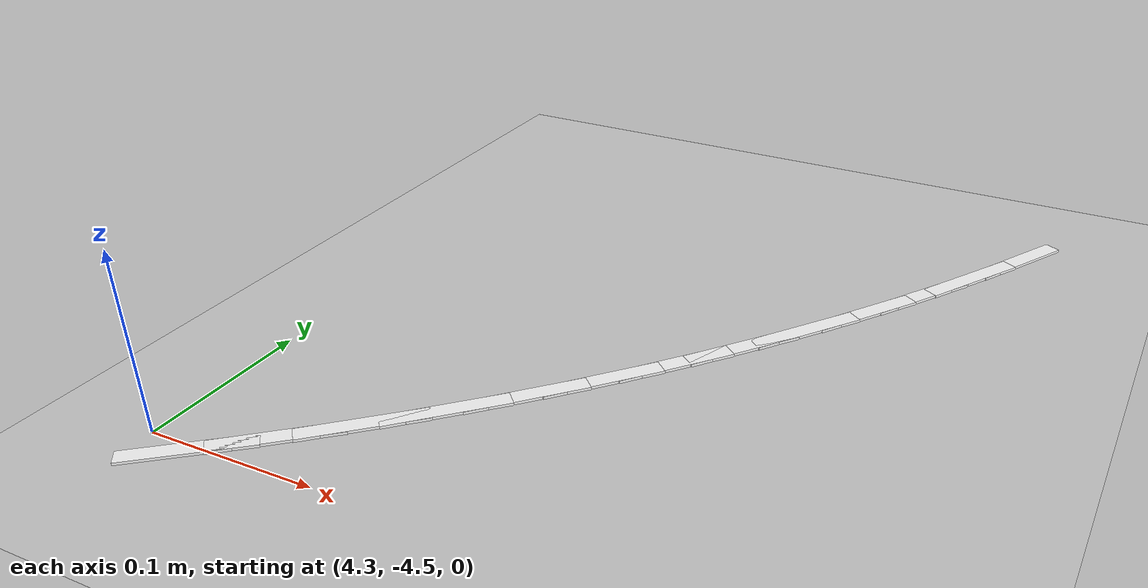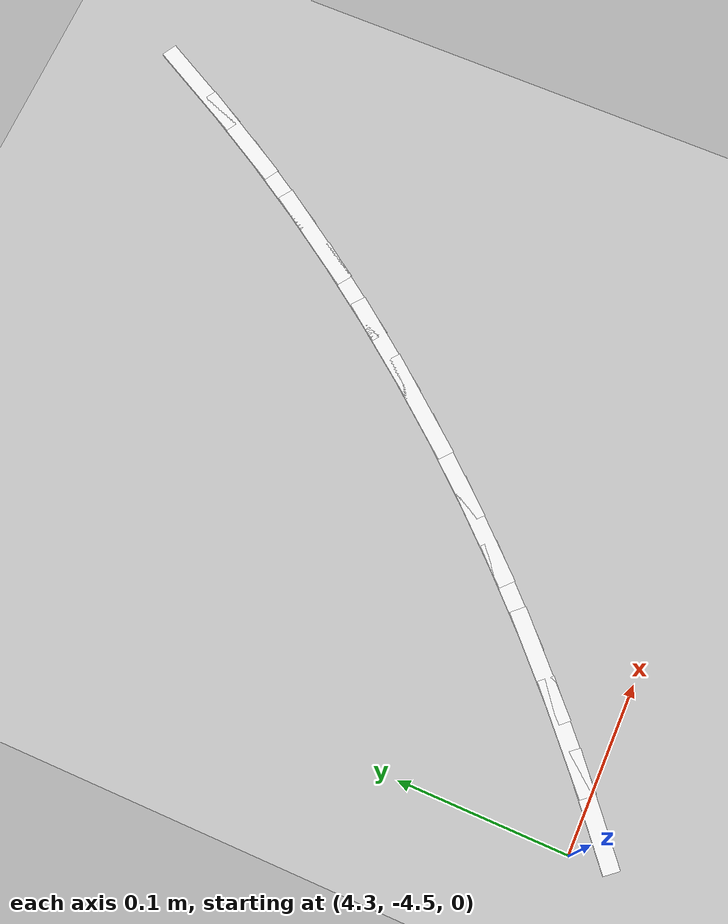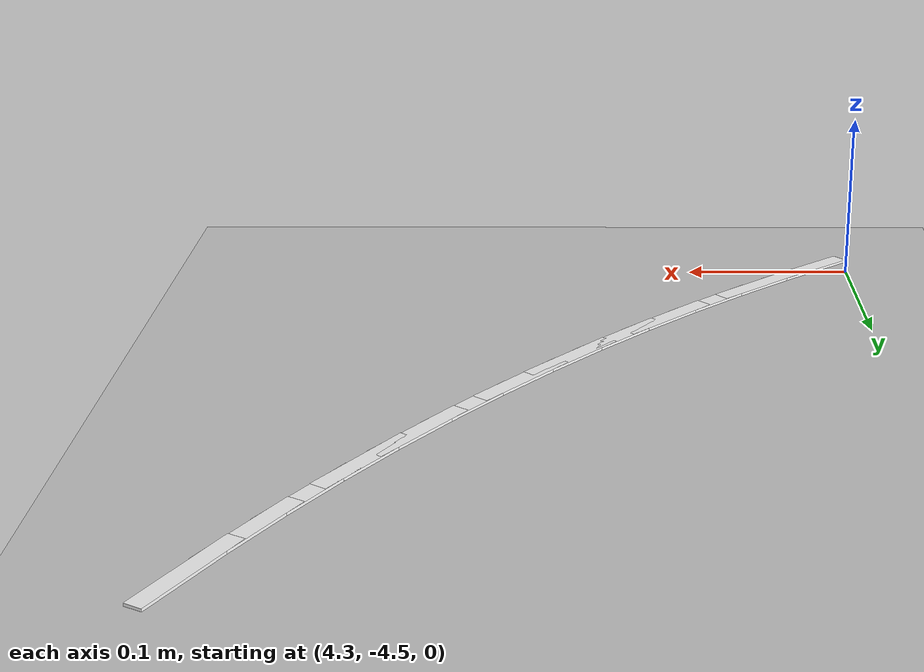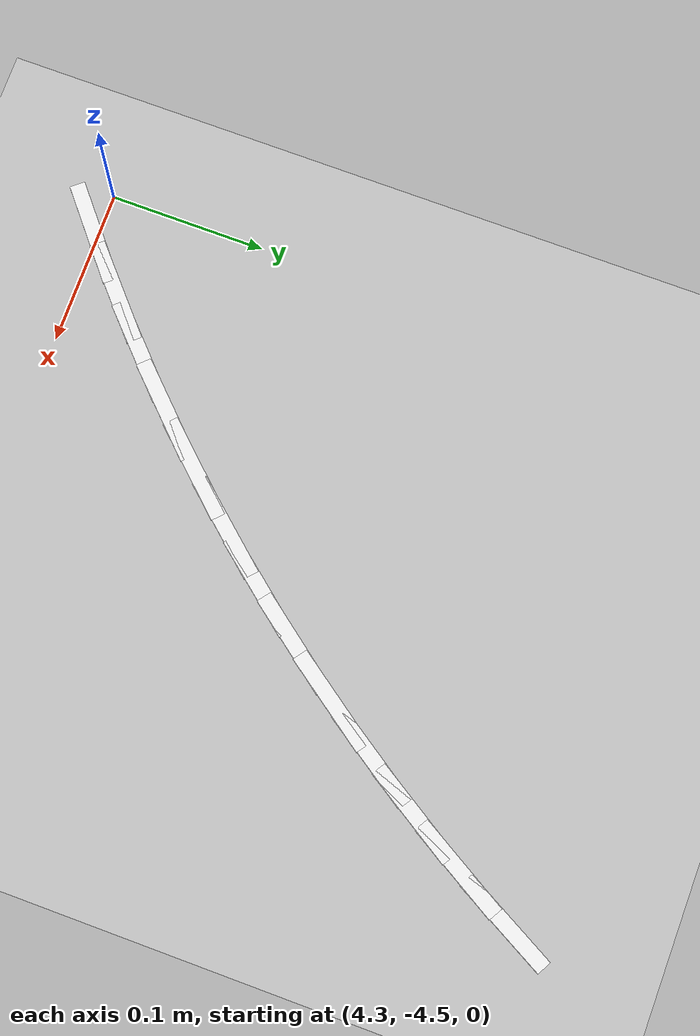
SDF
<sdf version="1.7">
 <world name="default">
  <model name="ground_plane">
   <static>1</static>
   <link name="link">
    <collision name="collision">
     <geometry><plane><normal>0 0 1</normal><size>100 100</size></plane></geometry>
     <surface>
      <contact><collide_bitmask>65535</collide_bitmask></contact>
      <friction><ode><mu>100</mu><mu2>50</mu2></ode></friction>
     </surface>
    </collision>
    <visual name="visual">
     <cast_shadows>0</cast_shadows>
     <geometry><plane><normal>0 0 1</normal><size>100 100</size></plane></geometry>
     <material>
      <script><uri>file://media/materials/scripts/gazebo.material</uri><name>Gazebo/Grey</name></script>
     </material>
    </visual>
   </link>
  </model>
  <model name="lane_line_left_71">
   <static>1</static>
   <link name="link">
    <pose>0 0 -0.004 0 -0 0</pose>
    <visual name="visual">
     <geometry><box><size>0.0681 0.01 0.01</size></box></geometry>
     <material><ambient>1 1 1 1</ambient><diffuse>1 1 1 1</diffuse></material>
    </visual>
    <collision name="collision"><geometry><box><size>0.0681 0.01 0.01</size></box></geometry></collision>
   </link>
   <pose>4.3266 -4.50311 0 0 -0 0.689227</pose>
  </model>
  <model name="lane_line_left_72">
   <static>1</static>
   <link name="link">
    <pose>0 0 -0.004 0 -0 0</pose>
    <visual name="visual">
     <geometry><box><size>0.0681 0.01 0.01</size></box></geometry>
     <material><ambient>1 1 1 1</ambient><diffuse>1 1 1 1</diffuse></material>
    </visual>
    <collision name="collision"><geometry><box><size>0.0681 0.01 0.01</size></box></geometry></collision>
   </link>
   <pose>4.35833 -4.4761 0 0 -0 0.721284</pose>
  </model>
  <model name="lane_line_left_73">
   <static>1</static>
   <link name="link">
    <pose>0 0 -0.004 0 -0 0</pose>
    <visual name="visual">
     <geometry><box><size>0.0681 0.01 0.01</size></box></geometry>
     <material><ambient>1 1 1 1</ambient><diffuse>1 1 1 1</diffuse></material>
    </visual>
    <collision name="collision"><geometry><box><size>0.0681 0.01 0.01</size></box></geometry></collision>
   </link>
   <pose>4.38917 -4.44809 0 0 -0 0.753341</pose>
  </model>
  <model name="lane_line_left_74">
   <static>1</static>
   <link name="link">
    <pose>0 0 -0.004 0 -0 0</pose>
    <visual name="visual">
     <geometry><box><size>0.0681 0.01 0.01</size></box></geometry>
     <material><ambient>1 1 1 1</ambient><diffuse>1 1 1 1</diffuse></material>
    </visual>
    <collision name="collision"><geometry><box><size>0.0681 0.01 0.01</size></box></geometry></collision>
   </link>
   <pose>4.4191 -4.4191 0 0 -0 0.785398</pose>
  </model>
  <model name="lane_line_left_75">
   <static>1</static>
   <link name="link">
    <pose>0 0 -0.004 0 -0 0</pose>
    <visual name="visual">
     <geometry><box><size>0.0681 0.01 0.01</size></box></geometry>
     <material><ambient>1 1 1 1</ambient><diffuse>1 1 1 1</diffuse></material>
    </visual>
    <collision name="collision"><geometry><box><size>0.0681 0.01 0.01</size></box></geometry></collision>
   </link>
   <pose>4.44809 -4.38917 0 0 -0 0.817455</pose>
  </model>
  <model name="lane_line_left_76">
   <static>1</static>
   <link name="link">
    <pose>0 0 -0.004 0 -0 0</pose>
    <visual name="visual">
     <geometry><box><size>0.0681 0.01 0.01</size></box></geometry>
     <material><ambient>1 1 1 1</ambient><diffuse>1 1 1 1</diffuse></material>
    </visual>
    <collision name="collision"><geometry><box><size>0.0681 0.01 0.01</size></box></geometry></collision>
   </link>
   <pose>4.4761 -4.35833 0 0 -0 0.849512</pose>
  </model>
  <model name="lane_line_left_77">
   <static>1</static>
   <link name="link">
    <pose>0 0 -0.004 0 -0 0</pose>
    <visual name="visual">
     <geometry><box><size>0.0681 0.01 0.01</size></box></geometry>
     <material><ambient>1 1 1 1</ambient><diffuse>1 1 1 1</diffuse></material>
    </visual>
    <collision name="collision"><geometry><box><size>0.0681 0.01 0.01</size></box></geometry></collision>
   </link>
   <pose>4.50311 -4.3266 0 0 -0 0.881569</pose>
  </model>
  <model name="lane_line_left_78">
   <static>1</static>
   <link name="link">
    <pose>0 0 -0.004 0 -0 0</pose>
    <visual name="visual">
     <geometry><box><size>0.0681 0.01 0.01</size></box></geometry>
     <material><ambient>1 1 1 1</ambient><diffuse>1 1 1 1</diffuse></material>
    </visual>
    <collision name="collision"><geometry><box><size>0.0681 0.01 0.01</size></box></geometry></collision>
   </link>
   <pose>4.52909 -4.29402 0 0 -0 0.913626</pose>
  </model>
  <model name="lane_line_left_79">
   <static>1</static>
   <link name="link">
    <pose>0 0 -0.004 0 -0 0</pose>
    <visual name="visual">
     <geometry><box><size>0.0681 0.01 0.01</size></box></geometry>
     <material><ambient>1 1 1 1</ambient><diffuse>1 1 1 1</diffuse></material>
    </visual>
    <collision name="collision"><geometry><box><size>0.0681 0.01 0.01</size></box></geometry></collision>
   </link>
   <pose>4.55401 -4.26063 0 0 -0 0.945684</pose>
  </model>
  <model name="lane_line_left_80">
   <static>1</static>
   <link name="link">
    <pose>0 0 -0.004 0 -0 0</pose>
    <visual name="visual">
     <geometry><box><size>0.0681 0.01 0.01</size></box></geometry>
     <material><ambient>1 1 1 1</ambient><diffuse>1 1 1 1</diffuse></material>
    </visual>
    <collision name="collision"><geometry><box><size>0.0681 0.01 0.01</size></box></geometry></collision>
   </link>
   <pose>4.57785 -4.22646 0 0 -0 0.977741</pose>
  </model>
  <model name="lane_line_left_81">
   <static>1</static>
   <link name="link">
    <pose>0 0 -0.004 0 -0 0</pose>
    <visual name="visual">
     <geometry><box><size>0.0681 0.01 0.01</size></box></geometry>
     <material><ambient>1 1 1 1</ambient><diffuse>1 1 1 1</diffuse></material>
    </visual>
    <collision name="collision"><geometry><box><size>0.0681 0.01 0.01</size></box></geometry></collision>
   </link>
   <pose>4.60058 -4.19154 0 0 -0 1.0098</pose>
  </model>
  <model name="lane_line_left_82">
   <static>1</static>
   <link name="link">
    <pose>0 0 -0.004 0 -0 0</pose>
    <visual name="visual">
     <geometry><box><size>0.0681 0.01 0.01</size></box></geometry>
     <material><ambient>1 1 1 1</ambient><diffuse>1 1 1 1</diffuse></material>
    </visual>
    <collision name="collision"><geometry><box><size>0.0681 0.01 0.01</size></box></geometry></collision>
   </link>
   <pose>4.62218 -4.15591 0 0 -0 1.04185</pose>
  </model>
  <model name="lane_line_left_83">
   <static>1</static>
   <link name="link">
    <pose>0 0 -0.004 0 -0 0</pose>
    <visual name="visual">
     <geometry><box><size>0.0681 0.01 0.01</size></box></geometry>
     <material><ambient>1 1 1 1</ambient><diffuse>1 1 1 1</diffuse></material>
    </visual>
    <collision name="collision"><geometry><box><size>0.0681 0.01 0.01</size></box></geometry></collision>
   </link>
   <pose>4.64262 -4.1196 0 0 -0 1.07391</pose>
  </model>
 </world>
</sdf>
